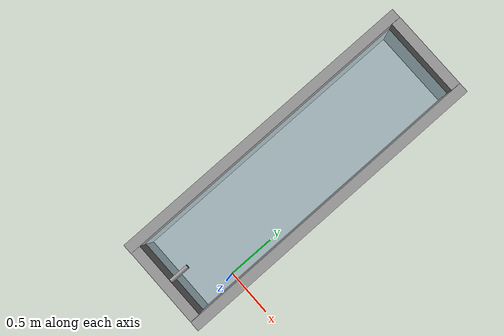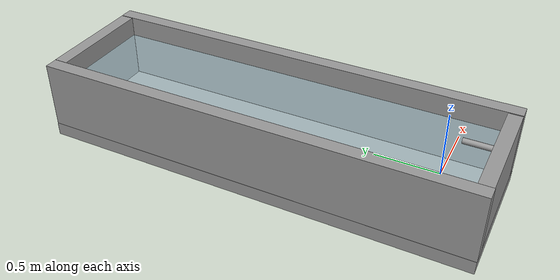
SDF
<?xml version='1.0'?>
<sdf version='1.7'>
  <model name='my_bath'>
    <link name='link_0'>
      <inertial>
        <mass>1</mass>
        <inertia>
          <ixx>0.166667</ixx>
          <ixy>0</ixy>
          <ixz>0</ixz>
          <iyy>0.166667</iyy>
          <iyz>0</iyz>
          <izz>0.166667</izz>
        </inertia>
        <pose>0 0 1 0 -0 0</pose>
      </inertial>
      <pose>-0.340094 1.14387 0 0 -0 0</pose>
      <gravity>0</gravity>
      <self_collide>0</self_collide>
      <kinematic>0</kinematic>
      <enable_wind>0</enable_wind>
      <visual name='visual'>
        <pose>0 0 0.045 0 -0 0</pose>
        <geometry>
          <box>
            <size>1 3.2 0.1</size>
          </box>
        </geometry>
        <material>
          <lighting>1</lighting>
          <script>
            <uri>file://media/materials/scripts/gazebo.material</uri>
            <name>Gazebo/Grey</name>
          </script>
          <shader type='pixel'>
            <normal_map>__default__</normal_map>
          </shader>
          <ambient>0.8 0.8 0.8 1</ambient>
          <diffuse>0.65 0.65 0.65 1</diffuse>
          <specular>0.01 0.01 0.01 1</specular>
          <emissive>0.1 0.1 0.1 1</emissive>
        </material>
        <transparency>0</transparency>
        <cast_shadows>1</cast_shadows>
      </visual>
      <collision name='collision'>
        <laser_retro>0</laser_retro>
        <max_contacts>10</max_contacts>
        <pose>0 0 0.045 0 -0 0</pose>
        <geometry>
          <box>
            <size>1 3.2 0.1</size>
          </box>
        </geometry>
        <surface>
          <friction>
            <ode>
              <mu>1</mu>
              <mu2>1</mu2>
              <fdir1>0 0 0</fdir1>
              <slip1>0</slip1>
              <slip2>0</slip2>
            </ode>
            <torsional>
              <coefficient>1</coefficient>
              <patch_radius>0</patch_radius>
              <surface_radius>0</surface_radius>
              <use_patch_radius>1</use_patch_radius>
              <ode>
                <slip>0</slip>
              </ode>
            </torsional>
          </friction>
          <bounce>
            <restitution_coefficient>0</restitution_coefficient>
            <threshold>1e+06</threshold>
          </bounce>
          <contact>
            <collide_without_contact>0</collide_without_contact>
            <collide_without_contact_bitmask>1</collide_without_contact_bitmask>
            <collide_bitmask>1</collide_bitmask>
            <ode>
              <soft_cfm>0</soft_cfm>
              <soft_erp>0.2</soft_erp>
              <kp>1e+13</kp>
              <kd>1</kd>
              <max_vel>0.01</max_vel>
              <min_depth>0</min_depth>
            </ode>
            <bullet>
              <split_impulse>1</split_impulse>
              <split_impulse_penetration_threshold>-0.01</split_impulse_penetration_threshold>
              <soft_cfm>0</soft_cfm>
              <soft_erp>0.2</soft_erp>
              <kp>1e+13</kp>
              <kd>1</kd>
            </bullet>
          </contact>
        </surface>
      </collision>
    </link>
    <link name='link_0_clone'>
      <inertial>
        <mass>1</mass>
        <inertia>
          <ixx>0.166667</ixx>
          <ixy>0</ixy>
          <ixz>0</ixz>
          <iyy>0.166667</iyy>
          <iyz>0</iyz>
          <izz>0.166667</izz>
        </inertia>
        <pose>0 0 1 0 -0 0</pose>
      </inertial>
      <pose>0.070286 1.14392 0.346232 0 1.5707 0</pose>
      <gravity>0</gravity>
      <self_collide>0</self_collide>
      <kinematic>0</kinematic>
      <enable_wind>0</enable_wind>
      <visual name='visual'>
        <pose>0 0 0.045 0 -0 0</pose>
        <geometry>
          <box>
            <size>0.5 3.2 0.1</size>
          </box>
        </geometry>
        <material>
          <lighting>1</lighting>
          <script>
            <uri>file://media/materials/scripts/gazebo.material</uri>
            <name>Gazebo/Grey</name>
          </script>
          <shader type='pixel'>
            <normal_map>__default__</normal_map>
          </shader>
          <ambient>0.8 0.8 0.8 1</ambient>
          <diffuse>0.65 0.65 0.65 1</diffuse>
          <specular>0.01 0.01 0.01 1</specular>
          <emissive>0.1 0.1 0.1 1</emissive>
        </material>
        <transparency>0</transparency>
        <cast_shadows>1</cast_shadows>
      </visual>
      <collision name='collision'>
        <laser_retro>0</laser_retro>
        <max_contacts>10</max_contacts>
        <pose>0 0 0.045 0 -0 0</pose>
        <geometry>
          <box>
            <size>0.5 3.2 0.1</size>
          </box>
        </geometry>
        <surface>
          <friction>
            <ode>
              <mu>1</mu>
              <mu2>1</mu2>
              <fdir1>0 0 0</fdir1>
              <slip1>0</slip1>
              <slip2>0</slip2>
            </ode>
            <torsional>
              <coefficient>1</coefficient>
              <patch_radius>0</patch_radius>
              <surface_radius>0</surface_radius>
              <use_patch_radius>1</use_patch_radius>
              <ode>
                <slip>0</slip>
              </ode>
            </torsional>
          </friction>
          <bounce>
            <restitution_coefficient>0</restitution_coefficient>
            <threshold>1e+06</threshold>
          </bounce>
          <contact>
            <collide_without_contact>0</collide_without_contact>
            <collide_without_contact_bitmask>1</collide_without_contact_bitmask>
            <collide_bitmask>1</collide_bitmask>
            <ode>
              <soft_cfm>0</soft_cfm>
              <soft_erp>0.2</soft_erp>
              <kp>1e+13</kp>
              <kd>1</kd>
              <max_vel>0.01</max_vel>
              <min_depth>0</min_depth>
            </ode>
            <bullet>
              <split_impulse>1</split_impulse>
              <split_impulse_penetration_threshold>-0.01</split_impulse_penetration_threshold>
              <soft_cfm>0</soft_cfm>
              <soft_erp>0.2</soft_erp>
              <kp>1e+13</kp>
              <kd>1</kd>
            </bullet>
          </contact>
        </surface>
      </collision>
    </link>
    <link name='link_0_clone_clone'>
      <inertial>
        <mass>1</mass>
        <inertia>
          <ixx>0.166667</ixx>
          <ixy>0</ixy>
          <ixz>0</ixz>
          <iyy>0.166667</iyy>
          <iyz>0</iyz>
          <izz>0.166667</izz>
        </inertia>
        <pose>0 0 1 0 -0 0</pose>
      </inertial>
      <pose>-0.834084 1.14237 0.344002 0 1.5707 0</pose>
      <gravity>0</gravity>
      <self_collide>0</self_collide>
      <kinematic>0</kinematic>
      <enable_wind>0</enable_wind>
      <visual name='visual'>
        <pose>0 0 0.045 0 -0 0</pose>
        <geometry>
          <box>
            <size>0.5 3.2 0.1</size>
          </box>
        </geometry>
        <material>
          <lighting>1</lighting>
          <script>
            <uri>file://media/materials/scripts/gazebo.material</uri>
            <name>Gazebo/Grey</name>
          </script>
          <shader type='pixel'>
            <normal_map>__default__</normal_map>
          </shader>
          <ambient>0.8 0.8 0.8 1</ambient>
          <diffuse>0.65 0.65 0.65 1</diffuse>
          <specular>0.01 0.01 0.01 1</specular>
          <emissive>0.1 0.1 0.1 1</emissive>
        </material>
        <transparency>0</transparency>
        <cast_shadows>1</cast_shadows>
      </visual>
      <collision name='collision'>
        <laser_retro>0</laser_retro>
        <max_contacts>10</max_contacts>
        <pose>0 0 0.045 0 -0 0</pose>
        <geometry>
          <box>
            <size>0.5 3.2 0.1</size>
          </box>
        </geometry>
        <surface>
          <friction>
            <ode>
              <mu>1</mu>
              <mu2>1</mu2>
              <fdir1>0 0 0</fdir1>
              <slip1>0</slip1>
              <slip2>0</slip2>
            </ode>
            <torsional>
              <coefficient>1</coefficient>
              <patch_radius>0</patch_radius>
              <surface_radius>0</surface_radius>
              <use_patch_radius>1</use_patch_radius>
              <ode>
                <slip>0</slip>
              </ode>
            </torsional>
          </friction>
          <bounce>
            <restitution_coefficient>0</restitution_coefficient>
            <threshold>1e+06</threshold>
          </bounce>
          <contact>
            <collide_without_contact>0</collide_without_contact>
            <collide_without_contact_bitmask>1</collide_without_contact_bitmask>
            <collide_bitmask>1</collide_bitmask>
            <ode>
              <soft_cfm>0</soft_cfm>
              <soft_erp>0.2</soft_erp>
              <kp>1e+13</kp>
              <kd>1</kd>
              <max_vel>0.01</max_vel>
              <min_depth>0</min_depth>
            </ode>
            <bullet>
              <split_impulse>1</split_impulse>
              <split_impulse_penetration_threshold>-0.01</split_impulse_penetration_threshold>
              <soft_cfm>0</soft_cfm>
              <soft_erp>0.2</soft_erp>
              <kp>1e+13</kp>
              <kd>1</kd>
            </bullet>
          </contact>
        </surface>
      </collision>
    </link>
    <link name='link_0_clone_clone_clone'>
      <inertial>
        <mass>1</mass>
        <inertia>
          <ixx>0.166667</ixx>
          <ixy>0</ixy>
          <ixz>0</ixz>
          <iyy>0.166667</iyy>
          <iyz>0</iyz>
          <izz>0.166667</izz>
        </inertia>
        <pose>0 0 1 0 -0 0</pose>
      </inertial>
      <pose>-0.383879 -0.405622 0.343978 0 1.5707 0</pose>
      <gravity>0</gravity>
      <self_collide>0</self_collide>
      <kinematic>0</kinematic>
      <enable_wind>0</enable_wind>
      <visual name='visual'>
        <pose>0 0 0.045 1.5707 -0 0</pose>
        <geometry>
          <box>
            <size>0.5 0.8 0.1</size>
          </box>
        </geometry>
        <material>
          <lighting>1</lighting>
          <script>
            <uri>file://media/materials/scripts/gazebo.material</uri>
            <name>Gazebo/Grey</name>
          </script>
          <shader type='pixel'>
            <normal_map>__default__</normal_map>
          </shader>
          <ambient>0.8 0.8 0.8 1</ambient>
          <diffuse>0.65 0.65 0.65 1</diffuse>
          <specular>0.01 0.01 0.01 1</specular>
          <emissive>0.1 0.1 0.1 1</emissive>
        </material>
        <transparency>0</transparency>
        <cast_shadows>1</cast_shadows>
      </visual>
      <collision name='collision'>
        <laser_retro>0</laser_retro>
        <max_contacts>10</max_contacts>
        <pose>0 0 0.045 1.5707 -0 0</pose>
        <geometry>
          <box>
            <size>0.5 0.8 0.1</size>
          </box>
        </geometry>
        <surface>
          <friction>
            <ode>
              <mu>1</mu>
              <mu2>1</mu2>
              <fdir1>0 0 0</fdir1>
              <slip1>0</slip1>
              <slip2>0</slip2>
            </ode>
            <torsional>
              <coefficient>1</coefficient>
              <patch_radius>0</patch_radius>
              <surface_radius>0</surface_radius>
              <use_patch_radius>1</use_patch_radius>
              <ode>
                <slip>0</slip>
              </ode>
            </torsional>
          </friction>
          <bounce>
            <restitution_coefficient>0</restitution_coefficient>
            <threshold>1e+06</threshold>
          </bounce>
          <contact>
            <collide_without_contact>0</collide_without_contact>
            <collide_without_contact_bitmask>1</collide_without_contact_bitmask>
            <collide_bitmask>1</collide_bitmask>
            <ode>
              <soft_cfm>0</soft_cfm>
              <soft_erp>0.2</soft_erp>
              <kp>1e+13</kp>
              <kd>1</kd>
              <max_vel>0.01</max_vel>
              <min_depth>0</min_depth>
            </ode>
            <bullet>
              <split_impulse>1</split_impulse>
              <split_impulse_penetration_threshold>-0.01</split_impulse_penetration_threshold>
              <soft_cfm>0</soft_cfm>
              <soft_erp>0.2</soft_erp>
              <kp>1e+13</kp>
              <kd>1</kd>
            </bullet>
          </contact>
        </surface>
      </collision>
    </link>
    <link name='link_0_clone_clone_clone_clone'>
      <inertial>
        <mass>1</mass>
        <inertia>
          <ixx>0.166667</ixx>
          <ixy>0</ixy>
          <ixz>0</ixz>
          <iyy>0.166667</iyy>
          <iyz>0</iyz>
          <izz>0.166667</izz>
        </inertia>
        <pose>0 0 1 0 -0 0</pose>
      </inertial>
      <pose>-0.382409 2.69474 0.343978 0 1.5707 0</pose>
      <gravity>0</gravity>
      <self_collide>0</self_collide>
      <kinematic>0</kinematic>
      <enable_wind>0</enable_wind>
      <visual name='visual'>
        <pose>0 0 0.045 1.5707 -0 0</pose>
        <geometry>
          <box>
            <size>0.5 0.8 0.1</size>
          </box>
        </geometry>
        <material>
          <lighting>1</lighting>
          <script>
            <uri>file://media/materials/scripts/gazebo.material</uri>
            <name>Gazebo/Grey</name>
          </script>
          <shader type='pixel'>
            <normal_map>__default__</normal_map>
          </shader>
          <ambient>0.8 0.8 0.8 1</ambient>
          <diffuse>0.65 0.65 0.65 1</diffuse>
          <specular>0.01 0.01 0.01 1</specular>
          <emissive>0.1 0.1 0.1 1</emissive>
        </material>
        <transparency>0</transparency>
        <cast_shadows>1</cast_shadows>
      </visual>
      <collision name='collision'>
        <laser_retro>0</laser_retro>
        <max_contacts>10</max_contacts>
        <pose>0 0 0.045 1.5707 -0 0</pose>
        <geometry>
          <box>
            <size>0.5 0.8 0.1</size>
          </box>
        </geometry>
        <surface>
          <friction>
            <ode>
              <mu>1</mu>
              <mu2>1</mu2>
              <fdir1>0 0 0</fdir1>
              <slip1>0</slip1>
              <slip2>0</slip2>
            </ode>
            <torsional>
              <coefficient>1</coefficient>
              <patch_radius>0</patch_radius>
              <surface_radius>0</surface_radius>
              <use_patch_radius>1</use_patch_radius>
              <ode>
                <slip>0</slip>
              </ode>
            </torsional>
          </friction>
          <bounce>
            <restitution_coefficient>0</restitution_coefficient>
            <threshold>1e+06</threshold>
          </bounce>
          <contact>
            <collide_without_contact>0</collide_without_contact>
            <collide_without_contact_bitmask>1</collide_without_contact_bitmask>
            <collide_bitmask>1</collide_bitmask>
            <ode>
              <soft_cfm>0</soft_cfm>
              <soft_erp>0.2</soft_erp>
              <kp>1e+13</kp>
              <kd>1</kd>
              <max_vel>0.01</max_vel>
              <min_depth>0</min_depth>
            </ode>
            <bullet>
              <split_impulse>1</split_impulse>
              <split_impulse_penetration_threshold>-0.01</split_impulse_penetration_threshold>
              <soft_cfm>0</soft_cfm>
              <soft_erp>0.2</soft_erp>
              <kp>1e+13</kp>
              <kd>1</kd>
            </bullet>
          </contact>
        </surface>
      </collision>
    </link>
    <link name='link_1'>
      <inertial>
        <mass>1</mass>
        <inertia>
          <ixx>0.166667</ixx>
          <ixy>0</ixy>
          <ixz>0</ixz>
          <iyy>0.166667</iyy>
          <iyz>0</iyz>
          <izz>0.166667</izz>
        </inertia>
        <pose>0 0 0 0 -0 0</pose>
      </inertial>
      <pose>-0.340085 1.16225 0 0 -0 0</pose>
      <gravity>1</gravity>
      <self_collide>0</self_collide>
      <kinematic>0</kinematic>
      <enable_wind>0</enable_wind>
      <visual name='visual'>
        <pose>0 0 0.27 0 -0 0</pose>
        <geometry>
          <box>
            <size>0.8 3 0.35</size>
          </box>
        </geometry>
        <material>
          <lighting>1</lighting>
          <script>
            <uri>file://media/materials/scripts/gazebo.material</uri>
            <name>Gazebo/Grey</name>
          </script>
          <shader type='pixel'>
            <normal_map>__default__</normal_map>
          </shader>
          <ambient>0.75 0.93 0.98 0.4</ambient>
          <diffuse>0.75 0.93 0.98 0.4</diffuse>
          <specular>0.01 0.01 0.01 0.4</specular>
          <emissive>0 0 0 0.4</emissive>
        </material>
        <transparency>0.5</transparency>
        <cast_shadows>1</cast_shadows>
      </visual>
      <collision name='collision'>
        <laser_retro>0</laser_retro>
        <max_contacts>10</max_contacts>
        <pose>0 0 0.27 0 -0 0</pose>
        <geometry>
          <box>
            <size>0.8 3 0.35</size>
          </box>
        </geometry>
        <surface>
          <friction>
            <ode>
              <mu>1</mu>
              <mu2>1</mu2>
              <fdir1>0 0 0</fdir1>
              <slip1>0</slip1>
              <slip2>0</slip2>
            </ode>
            <torsional>
              <coefficient>1</coefficient>
              <patch_radius>0</patch_radius>
              <surface_radius>0</surface_radius>
              <use_patch_radius>1</use_patch_radius>
              <ode>
                <slip>0</slip>
              </ode>
            </torsional>
          </friction>
          <bounce>
            <restitution_coefficient>0</restitution_coefficient>
            <threshold>1e+06</threshold>
          </bounce>
          <contact>
            <collide_without_contact>0</collide_without_contact>
            <collide_without_contact_bitmask>1</collide_without_contact_bitmask>
            <collide_bitmask>1</collide_bitmask>
            <ode>
              <soft_cfm>0</soft_cfm>
              <soft_erp>0.2</soft_erp>
              <kp>1e+13</kp>
              <kd>1</kd>
              <max_vel>0.01</max_vel>
              <min_depth>0</min_depth>
            </ode>
            <bullet>
              <split_impulse>1</split_impulse>
              <split_impulse_penetration_threshold>-0.01</split_impulse_penetration_threshold>
              <soft_cfm>0</soft_cfm>
              <soft_erp>0.2</soft_erp>
              <kp>1e+13</kp>
              <kd>1</kd>
            </bullet>
          </contact>
        </surface>
      </collision>
    </link>
    <link name='link_2'>
      <inertial>
        <mass>1</mass>
        <inertia>
          <ixx>0.145833</ixx>
          <ixy>0</ixy>
          <ixz>0</ixz>
          <iyy>0.145833</iyy>
          <iyz>0</iyz>
          <izz>0.125</izz>
        </inertia>
        <pose>0 0 0 0 -0 0</pose>
      </inertial>
      <pose>-0.32388 -0.261877 0.559506 0 -0 0</pose>
      <gravity>0</gravity>
      <self_collide>0</self_collide>
      <kinematic>0</kinematic>
      <enable_wind>0</enable_wind>
      <visual name='visual'>
        <pose>0 0 0 1.5707 -0 0</pose>
        <geometry>
          <cylinder>
            <radius>0.02</radius>
            <length>0.2</length>
          </cylinder>
        </geometry>
        <material>
          <lighting>1</lighting>
          <script>
            <uri>file://media/materials/scripts/gazebo.material</uri>
            <name>Gazebo/Grey</name>
          </script>
          <shader type='pixel'>
            <normal_map>__default__</normal_map>
          </shader>
          <ambient>0.8 0.8 0.8 1</ambient>
          <diffuse>0.2 0.2 0.2 1</diffuse>
          <specular>0.01 0.01 0.01 1</specular>
          <emissive>0 0 0 1</emissive>
        </material>
        <transparency>0</transparency>
        <cast_shadows>1</cast_shadows>
      </visual>
      <collision name='collision'>
        <laser_retro>0</laser_retro>
        <max_contacts>10</max_contacts>
        <pose>0 0 0 1.5707 -0 0</pose>
        <geometry>
          <cylinder>
            <radius>0.02</radius>
            <length>0.2</length>
          </cylinder>
        </geometry>
        <surface>
          <friction>
            <ode>
              <mu>1</mu>
              <mu2>1</mu2>
              <fdir1>0 0 0</fdir1>
              <slip1>0</slip1>
              <slip2>0</slip2>
            </ode>
            <torsional>
              <coefficient>1</coefficient>
              <patch_radius>0</patch_radius>
              <surface_radius>0</surface_radius>
              <use_patch_radius>1</use_patch_radius>
              <ode>
                <slip>0</slip>
              </ode>
            </torsional>
          </friction>
          <bounce>
            <restitution_coefficient>0</restitution_coefficient>
            <threshold>1e+06</threshold>
          </bounce>
          <contact>
            <collide_without_contact>0</collide_without_contact>
            <collide_without_contact_bitmask>1</collide_without_contact_bitmask>
            <collide_bitmask>1</collide_bitmask>
            <ode>
              <soft_cfm>0</soft_cfm>
              <soft_erp>0.2</soft_erp>
              <kp>1e+13</kp>
              <kd>1</kd>
              <max_vel>0.01</max_vel>
              <min_depth>0</min_depth>
            </ode>
            <bullet>
              <split_impulse>1</split_impulse>
              <split_impulse_penetration_threshold>-0.01</split_impulse_penetration_threshold>
              <soft_cfm>0</soft_cfm>
              <soft_erp>0.2</soft_erp>
              <kp>1e+13</kp>
              <kd>1</kd>
            </bullet>
          </contact>
        </surface>
      </collision>
    </link>
    <static>1</static>
    <allow_auto_disable>1</allow_auto_disable>
  </model>
</sdf>
